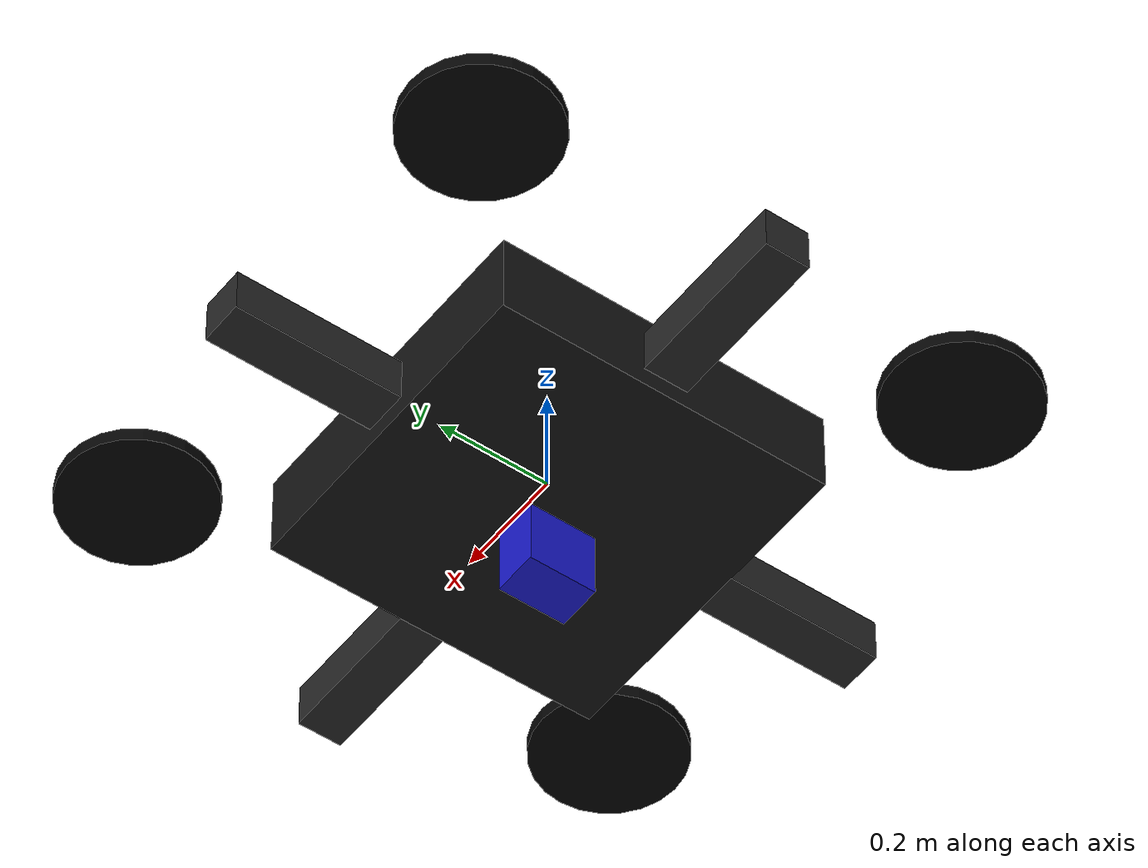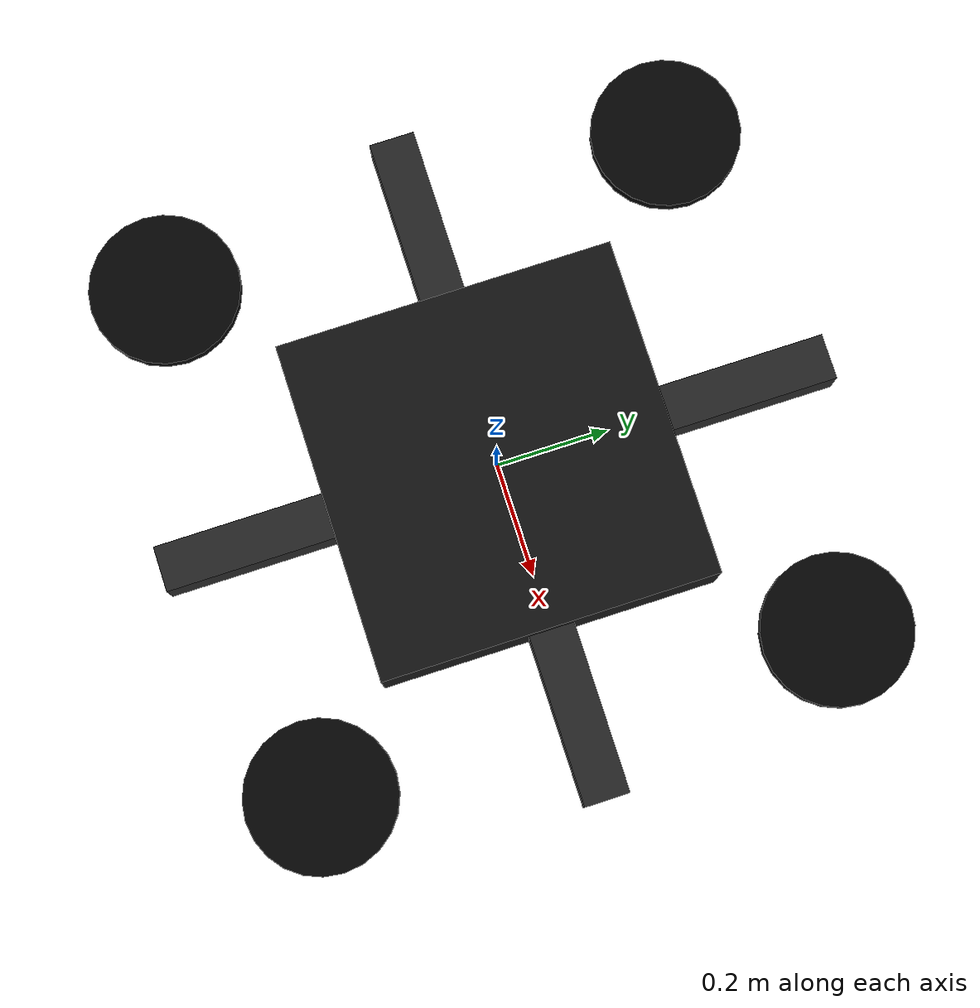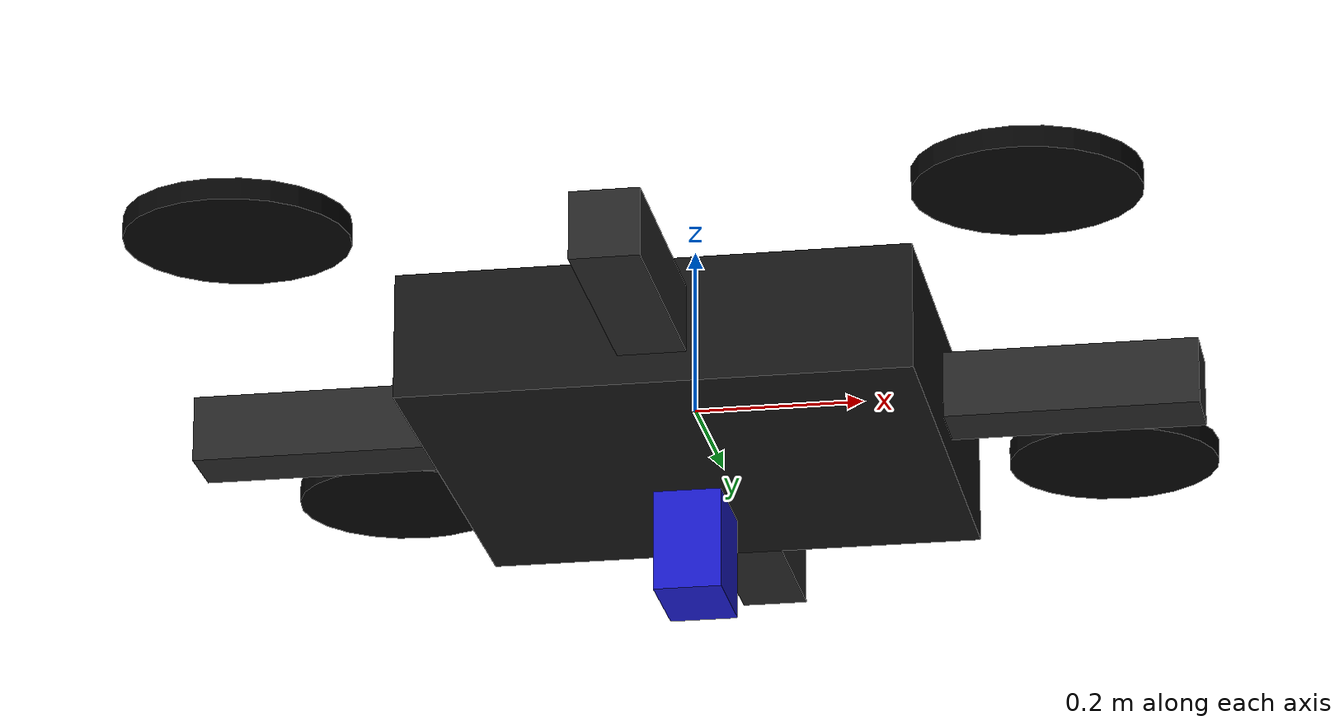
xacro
<?xml version="1.0"?>
<robot name="drone" xmlns:xacro="http://www.ros.org/wiki/xacro">

  <!-- =========================
       Base drone body
       ========================= -->
  <link name="base_link">

    <inertial>
      <origin xyz="0 0 0"/>
      <mass value="1.5"/>
      <inertia
        ixx="0.02"
        ixy="0.0"
        ixz="0.0"
        iyy="0.02"
        iyz="0.0"
        izz="0.03"/>
    </inertial>

    <visual>
      <origin xyz="0 0 0"/>
      <geometry>
        <box size="0.6 0.6 0.15"/>
      </geometry>
      <material name="black">
        <color rgba="0.08 0.08 0.08 1.0"/>
      </material>
    </visual>

    <collision>
      <origin xyz="0 0 0"/>
      <geometry>
        <box size="0.6 0.6 0.15"/>
      </geometry>
    </collision>

    <!-- Keep the drone floating for this first spawn stage -->
    <gazebo>
      <gravity>false</gravity>
    </gazebo>

  </link>

  <!-- =========================
       Arm 1
       ========================= -->
  <link name="arm_front">
    <visual>
      <origin xyz="0 0 0"/>
      <geometry>
        <box size="1.2 0.08 0.08"/>
      </geometry>
      <material name="dark">
        <color rgba="0.15 0.15 0.15 1.0"/>
      </material>
    </visual>
  </link>

  <joint name="arm_front_joint" type="fixed">
    <parent link="base_link"/>
    <child link="arm_front"/>
    <origin xyz="0 0 0.0" rpy="0 0 0"/>
  </joint>

  <!-- =========================
       Arm 2
       ========================= -->
  <link name="arm_side">
    <visual>
      <origin xyz="0 0 0"/>
      <geometry>
        <box size="0.08 1.2 0.08"/>
      </geometry>
      <material name="dark">
        <color rgba="0.15 0.15 0.15 1.0"/>
      </material>
    </visual>
  </link>

  <joint name="arm_side_joint" type="fixed">
    <parent link="base_link"/>
    <child link="arm_side"/>
    <origin xyz="0 0 0" rpy="0 0 0"/>
  </joint>

  <!-- =========================
       Rotor helper macro
       ========================= -->
  <xacro:macro name="rotor" params="name x y">

    <link name="${name}">

      <visual>
        <origin xyz="0 0 0"/>
        <geometry>
          <cylinder radius="0.13" length="0.025"/>
        </geometry>
        <material name="rotor_material">
          <color rgba="0.02 0.02 0.02 1.0"/>
        </material>
      </visual>

    </link>

    <joint name="${name}_joint" type="fixed">
      <parent link="base_link"/>
      <child link="${name}"/>
      <origin xyz="${x} ${y} 0.08" rpy="0 0 0"/>
    </joint>

  </xacro:macro>

  <!-- Four rotors -->
  <xacro:rotor name="rotor_front_left"  x="0.45"  y="0.45"/>
  <xacro:rotor name="rotor_front_right" x="0.45"  y="-0.45"/>
  <xacro:rotor name="rotor_rear_left"   x="-0.45" y="0.45"/>
  <xacro:rotor name="rotor_rear_right"  x="-0.45" y="-0.45"/>

  <!-- =========================
       Camera link
       ========================= -->
  <link name="drone_camera_link">

    <visual>
      <origin xyz="0 0 0"/>
      <geometry>
        <box size="0.12 0.12 0.08"/>
      </geometry>
      <material name="camera_body">
        <color rgba="0.1 0.1 0.8 1.0"/>
      </material>
    </visual>

  </link>

  <joint name="camera_joint" type="fixed">
    <parent link="base_link"/>
    <child link="drone_camera_link"/>
    <origin xyz="0 0 -0.18" rpy="0 1.5708 0"/>
  </joint>

  <!-- =========================
       Gazebo camera
       ========================= -->
  <gazebo reference="drone_camera_link">

    <sensor name="drone_camera" type="camera">

      <always_on>true</always_on>
      <update_rate>30.0</update_rate>
      <visualize>true</visualize>

      <camera>

        <horizontal_fov>1.047</horizontal_fov>

        <image>
          <width>640</width>
          <height>480</height>
          <format>R8G8B8</format>
        </image>

        <clip>
          <near>0.05</near>
          <far>100.0</far>
        </clip>

      </camera>

      <plugin
        name="drone_camera_controller"
        filename="libgazebo_ros_camera.so">

        <ros>
          <namespace>/drone</namespace>
        </ros>

        <camera_name>camera</camera_name>
        <frame_name>drone_camera_link</frame_name>

      </plugin>

    </sensor>

  </gazebo>

</robot>
